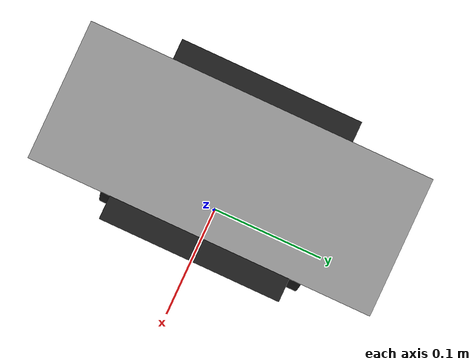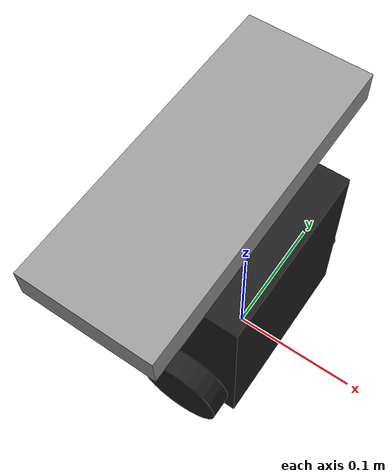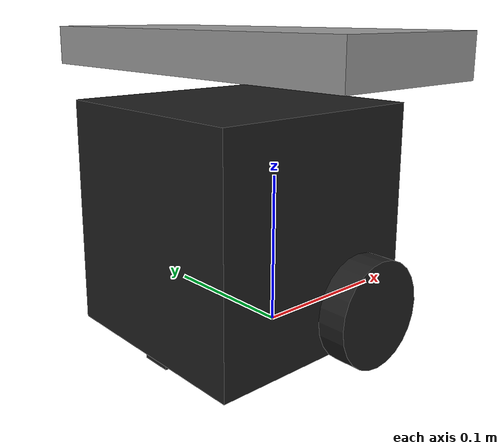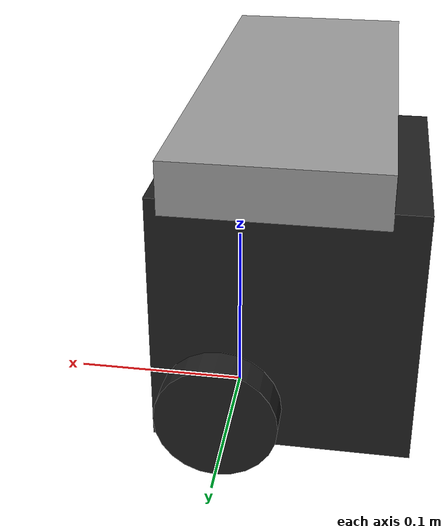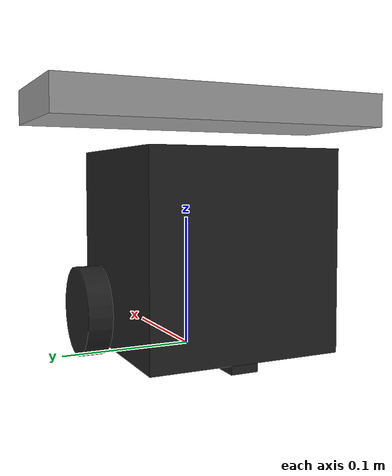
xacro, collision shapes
<?xml version="1.0" ?>
<robot name="turtlebot3_burger" xmlns:xacro="http://ros.org/wiki/xacro">
  <xacro:include filename="$(find turtlebot3_description)/urdf/common_properties.xacro"/>
  <xacro:include filename="$(find turtlebot3_description)/urdf/turtlebot3_burger.gazebo.xacro"/>

  <link name="base_footprint"/>

  <joint name="base_joint" type="fixed">
    <parent link="base_footprint"/>
    <child link="base_link"/>
    <origin xyz="0.0 0.0 0.010" rpy="0 0 0"/>
  </joint>

  <link name="base_link">
    <visual>
      <origin xyz="-0.032 0 0.0" rpy="0 0 0"/>
      <geometry>
        <mesh filename="package://turtlebot3_description/meshes/bases/burger_base.stl" scale="0.001 0.001 0.001"/>
      </geometry>
      <material name="light_black"/>
    </visual>

    <collision>
      <origin xyz="-0.032 0 0.070" rpy="0 0 0"/>
      <geometry>
        <box size="0.140 0.140 0.143"/>
      </geometry>
    </collision>

    <inertial>
      <origin xyz="0 0 0" rpy="0 0 0"/>
      <mass value="8.2573504e-01"/>
      <inertia ixx="2.2124416e-03" ixy="-1.2294101e-05" ixz="3.4938785e-05"
               iyy="2.1193702e-03" iyz="-5.0120904e-06"
               izz="2.0064271e-03" />
    </inertial>
  </link>

  <joint name="wheel_left_joint" type="continuous">
    <parent link="base_link"/>
    <child link="wheel_left_link"/>
    <origin xyz="0.0 0.08 0.023" rpy="-1.57 0 0"/>
    <axis xyz="0 0 1"/>
  </joint>

  <link name="wheel_left_link">
    <visual>
      <origin xyz="0 0 0" rpy="1.57 0 0"/>
      <geometry>
        <mesh filename="package://turtlebot3_description/meshes/wheels/left_tire.stl" scale="0.001 0.001 0.001"/>
      </geometry>
      <material name="dark"/>
    </visual>

    <collision>
      <origin xyz="0 0 0" rpy="0 0 0"/>
      <geometry>
        <cylinder length="0.018" radius="0.033"/>
      </geometry>
    </collision>

    <inertial>
      <origin xyz="0 0 0" />
      <mass value="2.8498940e-02" />
      <inertia ixx="1.1175580e-05" ixy="-4.2369783e-11" ixz="-5.9381719e-09"
               iyy="1.1192413e-05" iyz="-1.4400107e-11"
               izz="2.0712558e-05" />
      </inertial>
  </link>

  <joint name="wheel_right_joint" type="continuous">
    <parent link="base_link"/>
    <child link="wheel_right_link"/>
    <origin xyz="0.0 -0.080 0.023" rpy="-1.57 0 0"/>
    <axis xyz="0 0 1"/>
  </joint>

  <link name="wheel_right_link">
    <visual>
      <origin xyz="0 0 0" rpy="1.57 0 0"/>
      <geometry>
        <mesh filename="package://turtlebot3_description/meshes/wheels/right_tire.stl" scale="0.001 0.001 0.001"/>
      </geometry>
      <material name="dark"/>
    </visual>

    <collision>
      <origin xyz="0 0 0" rpy="0 0 0"/>
      <geometry>
        <cylinder length="0.018" radius="0.033"/>
      </geometry>
    </collision>

    <inertial>
      <origin xyz="0 0 0" />
      <mass value="2.8498940e-02" />
      <inertia ixx="1.1175580e-05" ixy="-4.2369783e-11" ixz="-5.9381719e-09"
               iyy="1.1192413e-05" iyz="-1.4400107e-11"
               izz="2.0712558e-05" />
      </inertial>
  </link>

  <joint name="caster_back_joint" type="fixed">
    <parent link="base_link"/>
    <child link="caster_back_link"/>
    <origin xyz="-0.081 0 -0.004" rpy="-1.57 0 0"/>
  </joint>

  <link name="caster_back_link">
    <collision>
      <origin xyz="0 0.001 0" rpy="0 0 0"/>
      <geometry>
        <box size="0.030 0.009 0.020"/>
      </geometry>
    </collision>

    <inertial>
      <origin xyz="0 0 0" />
      <mass value="0.005" />
      <inertia ixx="0.001" ixy="0.0" ixz="0.0"
               iyy="0.001" iyz="0.0"
               izz="0.001" />
    </inertial>
  </link>

  <joint name="camera_joint" type="fixed">
      <axis xyz="0 1 0" />
      <origin xyz="-0.032 0 0.172" rpy="0 0 0"/>
      <parent link="base_link"/>
      <child link="camera_link"/>
    </joint>

    <link name="camera_link">
        <collision>
        <origin rpy="0 0 ${pi/2}" xyz="0 0 0"/>
        <geometry>
            <box size="0.25 0.1 0.025"/>
        </geometry>
        </collision>

        <visual>
        <!-- Changed origin, because mesh model was turned 90 degrees to where camera was pointed to -->
        <origin rpy="0 0 ${pi/2}" xyz="0 0 0"/>
        <geometry>
            <mesh filename="package://turtlebot3_description/meshes/realsense_d435/meshes/realsense.dae"/>
        </geometry>
        </visual>

        <inertial>
        <mass value="0.0615752" />
        <origin xyz="0 0 0" rpy="0 0 0"/>
        <inertia ixx="9.108e-05" ixy="0" ixz="0" iyy="2.51e-06" iyz="0" izz="8.931e-05"/>
        </inertial>
    </link>

    <!-- generate an optical frame http://www.ros.org/reps/rep-0103.html#suffix-frames
        so that ros and opencv can operate on the camera frame correctly -->
    <joint name="camera_optical_joint" type="fixed">
        <!-- these values have to be these values otherwise the gazebo camera image
            won't be aligned properly with the frame it is supposedly originating from -->
        <origin rpy="0 0 0" xyz="0 0 0"/>
        <parent link="camera_link"/>
        <child link="camera_link_optical"/>
    </joint>

    <link name="camera_link_optical">
    </link>

</robot>
